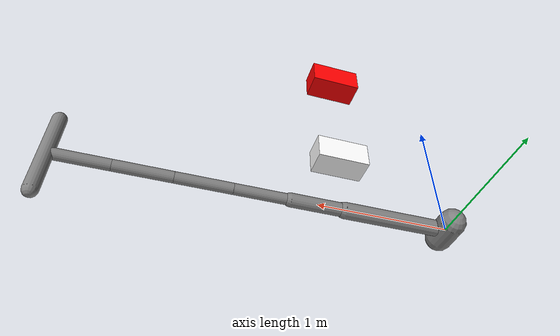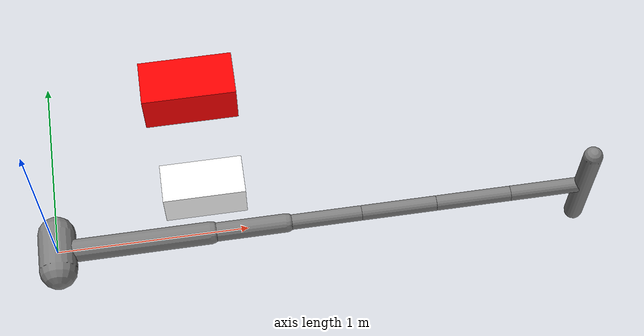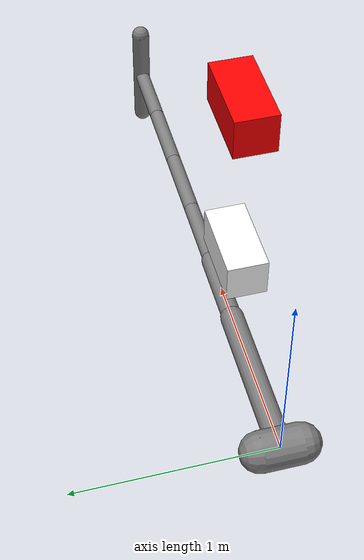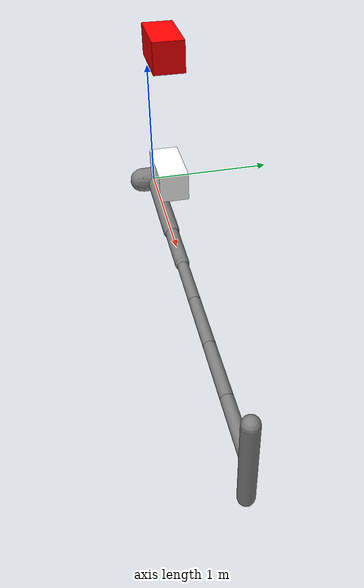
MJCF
<mujoco model="arm3d">
    <compiler inertiafromgeom="true" angle="radian" coordinate="local" />
    <option timestep="0.01" gravity="0 0 0" iterations="20" integrator="Euler" />

    <default>
        <joint armature='0.04' damping="1" limited="true"/>
        <geom friction=".8 .1 .1" density="1000" margin="0.002" condim="1" contype="1" conaffinity="1"/>
    </default>

    <worldbody>
        <body name="palm" pos="0 0 0">
            <geom type="capsule" fromto="0 -0.1 0 0 0.1 0" size="0.1"/>

            <body name="proximal_1" pos="0 0 0">
                <joint name="proximal_j_1" type="hinge" pos="0 0 0" axis="0 1 0" range="-2.5236 2.3963" damping="10.0" />
                <geom type="capsule" fromto="0 0 0 0.8 0 0" size="0.06" contype="1" conaffinity="1"/>
                <body name="distal_1" pos="0.8 0 0">
                    <joint name="distal_j_1" type="hinge" pos="0 0 0" axis="0 1 0" range="-2.3213 2.3" damping="1.0"/>
                    <geom type="capsule" fromto="0 0 0 0.4 0 0" size="0.05" contype="1" conaffinity="1"/>
                    <body name="distal_2" pos="0.4 0 0">
                        <joint name="distal_j_2" type="hinge" pos="0 0 0" axis="0 1 0" range="-2.3213 2.3" damping="1.0"/>
                        <geom type="capsule" fromto="0 0 0 0.4 0 0" size="0.04" contype="1" conaffinity="1"/>
                        <body name="distal_3" pos="0.4 0 0">
                            <joint name="distal_j_3" type="hinge" pos="0 0 0" axis="0 1 0" range="-2.3213 2.3" damping="1.0"/>
                            <geom type="capsule" fromto="0 0 0 0.4 0 0" size="0.04" contype="1" conaffinity="1"/>
                            <body name="distal_4" pos="0.4 0 0">
                                <joint name="distal_j_4" type="hinge" pos="0 0 0" axis="0 1 0" range="-2.3213 2.3" damping="1.0"/>
                                <geom type="capsule" fromto="0 0 0 0.4 0 0" size="0.04" contype="1" conaffinity="1"/>
                                <body name="distal_5" pos="0.4 0 0">
                                    <joint name="distal_j_5" type="hinge" pos="0 0 0" axis="0 1 0" range="-2.3213 2.3" damping="1.0"/>
                                    <geom type="capsule" fromto="0 0 0 0.4 0 0" size="0.04" contype="1" conaffinity="1"/>
                                    <body name="distal_11" pos="0.4 0 0">
                                        <site name="peg_bottom" pos="0 0 -0.3" size="0.01" />
                                        <site name="peg_top" pos="0 0 0.3" size="0.01" />
                                        <geom type="capsule" fromto="0 0 -0.3 0 0 0.3" size="0.05" contype="1" conaffinity="1"/>
                                    </body>
                                </body>
                            </body>
                        </body>
                    </body>
                </body>
            </body>
        </body>
        <body name="object" pos="0.8 0.0 0.5">
            <geom rgba="1. 1. 1. 1" type="box" size="0.2 0.1 0.1" density='0.00001' contype="1" conaffinity="1"/>
            <joint name="obj_slidez" type="slide" pos="0.1 0.05 0.05" axis="0 0 1" range="-10.3213 10.3" damping="0.5"/>
            <joint name="obj_slidex" type="slide" pos="0.1 0.05 0.05" axis="1 0 0" range="-10.3213 10.3" damping="0.5"/>
            <joint name="obj_hinge" type="hinge" pos="0.1 0.05 0.05" axis="0 1 0" range="-10.3213 10.3" damping="0.1"/>
            <body name="distal_10" pos="0 0 0">
                <site name="obj_pos" pos="0.1 0.05 0.05" size="0.01" />
            </body>
        </body>

        <body name="goal" pos="0.8 0 1.4">
            <geom rgba="1. 0. 0. 1" type="box" size="0.2 0.1 0.1" density='0.00001' contype="0" conaffinity="0"/>
        </body>
    </worldbody>

    <actuator>
        <motor joint="proximal_j_1" ctrlrange="-2 2" ctrllimited="true"/>
        <motor joint="distal_j_1" ctrlrange="-2 2" ctrllimited="true"/>
        <motor joint="distal_j_2" ctrlrange="-2 2" ctrllimited="true"/>
        <motor joint="distal_j_3" ctrlrange="-2 2" ctrllimited="true"/>
        <motor joint="distal_j_4" ctrlrange="-2 2" ctrllimited="true"/>
        <motor joint="distal_j_5" ctrlrange="-2 2" ctrllimited="true"/>
    </actuator>
</mujoco>
